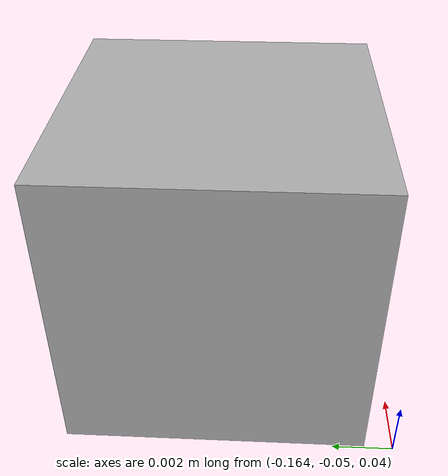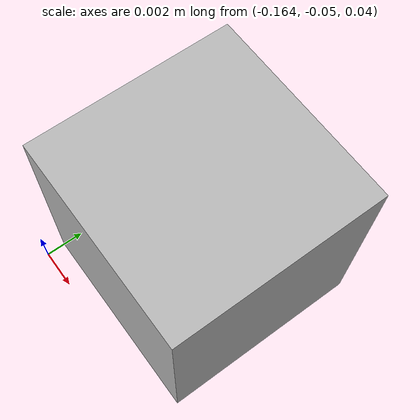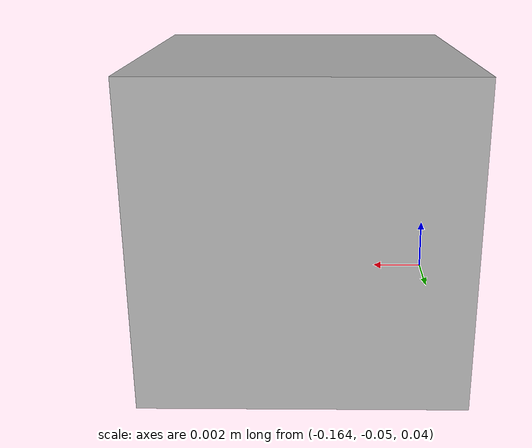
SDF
<?xml version='1.0'?>
<sdf version='1.6'>
    <model name='gst_cam'>
    <pose>-0.158979 -0.04405 0.045074 0 -0 0</pose>

    <link name='link'>
        <inertial>
          <mass>0.015</mass>
          <inertia>
            <ixx>4.15e-6</ixx>
          <ixy>0</ixy>
          <ixz>0</ixz>
          <iyy>2.407e-6</iyy>
          <iyz>0</iyz>
          <izz>2.407e-6</izz>
          </inertia>
        </inertial>

        <collision name='collision'>
          <geometry>
            <box>
              <size>0.01 0.01 0.01</size>
            </box>
          </geometry>
          <max_contacts>10</max_contacts>
          <surface>
            <contact>
              <ode/>
            </contact>
            <bounce/>
            <friction>
              <ode/>
            </friction>
          </surface>
        </collision>
        <visual name='visual'>
          <geometry>
            <box>
              <size>0.01 0.01 0.01</size>
            </box>
          </geometry>
        </visual>
        <sensor name="camera_imu" type="imu">
          <always_on>1</always_on>
      	</sensor>
        <sensor name='camera' type='camera'>
          <camera name='__default__'>
            <horizontal_fov>2.0</horizontal_fov>
            <image>
              <format>R8G8B8</format>
              <width>640</width>
              <height>360</height>
            </image>
            <clip>
              <near>0.05</near>
              <far>15000</far>
            </clip>
            <lens>
              <type>custom</type>
              <custom_function>
                <c1>1.05</c1>
                <c2>4</c2>
                <f>1</f>
                <fun>tan</fun>
              </custom_function>
              <scale_to_hfov>1</scale_to_hfov>
              <cutoff_angle>3.1415</cutoff_angle>
              <env_texture_size>1080</env_texture_size>
            </lens>
          </camera>
          <always_on>1</always_on>
          <update_rate>10</update_rate>
          <visualize>1</visualize>
          <plugin name='camera_plugin' filename='libgazebo_ros_camera.so'>
            <robotNamespace></robotNamespace>
            <alwaysOn>true</alwaysOn>
            <imageTopicName>image_raw</imageTopicName>
            <cameraInfoTopicName>camera_info</cameraInfoTopicName>
            <updateRate>30.0</updateRate>
            <cameraName>usb_cam</cameraName>
            <frameName>/robot_camera_link</frameName>
            <CxPrime>320.5</CxPrime>
            <Cx>320.5</Cx>
            <Cy>240.5</Cy>
            <hackBaseline>0</hackBaseline>
            <focalLength>277.191356</focalLength>
            <distortionK1>0.0</distortionK1>
            <distortionK2>0.0</distortionK2>
            <distortionK3>0.0</distortionK3>
            <distortionT1>0.0</distortionT1>
            <distortionT2>0.0</distortionT2>
          </plugin>
          <plugin name="GstCameraPlugin" filename="libgazebo_gst_camera_plugin.so">
       	<robotNamespace></robotNamespace>
       	<udpHost>127.0.0.1</udpHost>
       	<udpPort>5600</udpPort>
     	   </plugin>
     	   <plugin name="GeotaggedImagesPlugin" filename="libgazebo_geotagged_images_plugin.so">
        	<robotNamespace></robotNamespace>
        	<interval>1</interval>
        	<width>3840</width>
        	<height>2160</height>
           </plugin>
           <plugin name="CameraManagerPlugin" filename="libgazebo_camera_manager_plugin.so">
            <robotNamespace></robotNamespace>
            <interval>1</interval>
            <width>3840</width>
            <height>2160</height>
            <maximum_zoom>8.0</maximum_zoom>
            <video_uri>udp://127.0.0.1:5600</video_uri>
            <system_id>1</system_id>
            <cam_component_id>100</cam_component_id>
            <mavlink_cam_udp_port>14530</mavlink_cam_udp_port>
        </plugin>
        </sensor>
        <self_collide>0</self_collide>
        <kinematic>0</kinematic>
      </link>

  </model>
</sdf>
